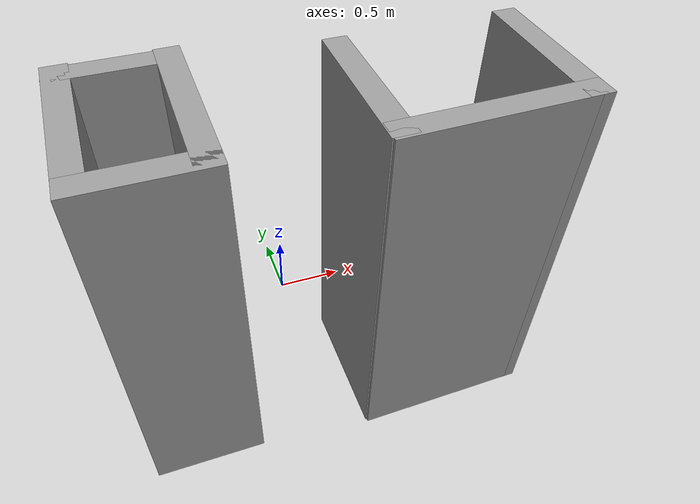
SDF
<?xml version='1.0'?>
<sdf version='1.7'>
  <model name='wall_map2'>
    <pose>0.060166 -0.744163 0 0 -0 0</pose>
    <link name='Wall_0'>
      <collision name='Wall_0_Collision'>
        <geometry>
          <box>
            <size>1.2242 0.15 2.5</size>
          </box>
        </geometry>
        <pose>0 0 1.25 0 -0 0</pose>
      </collision>
      <visual name='Wall_0_Visual'>
        <pose>0 0 1.25 0 -0 0</pose>
        <geometry>
          <box>
            <size>1.2242 0.15 2.5</size>
          </box>
        </geometry>
        <material>
          <script>
            <uri>file://media/materials/scripts/gazebo.material</uri>
            <name>Gazebo/Grey</name>
          </script>
          <ambient>1 1 1 1</ambient>
        </material>
        <meta>
          <layer>0</layer>
        </meta>
      </visual>
      <pose>0.763199 -0.659319 0 0 -0 0.016099</pose>
    </link>
    <link name='Wall_10'>
      <collision name='Wall_10_Collision'>
        <geometry>
          <box>
            <size>0.75 0.15 2.5</size>
          </box>
        </geometry>
        <pose>0 0 1.25 0 -0 0</pose>
      </collision>
      <visual name='Wall_10_Visual'>
        <pose>0 0 1.25 0 -0 0</pose>
        <geometry>
          <box>
            <size>0.75 0.15 2.5</size>
          </box>
        </geometry>
        <material>
          <script>
            <uri>file://media/materials/scripts/gazebo.material</uri>
            <name>Gazebo/Grey</name>
          </script>
          <ambient>1 1 1 1</ambient>
        </material>
        <meta>
          <layer>0</layer>
        </meta>
      </visual>
      <pose>-0.992121 -0.593986 0 0 -0 0</pose>
    </link>
    <link name='Wall_12'>
      <collision name='Wall_12_Collision'>
        <geometry>
          <box>
            <size>1.12974 0.15 2.5</size>
          </box>
        </geometry>
        <pose>0 0 1.25 0 -0 0</pose>
      </collision>
      <visual name='Wall_12_Visual'>
        <pose>0 0 1.25 0 -0 0</pose>
        <geometry>
          <box>
            <size>1.12974 0.15 2.5</size>
          </box>
        </geometry>
        <material>
          <script>
            <uri>file://media/materials/scripts/gazebo.material</uri>
            <name>Gazebo/Grey</name>
          </script>
          <ambient>1 1 1 1</ambient>
        </material>
        <meta>
          <layer>0</layer>
        </meta>
      </visual>
      <pose>-0.696445 -0.09549 0 0 -0 1.57962</pose>
    </link>
    <link name='Wall_13'>
      <collision name='Wall_13_Collision'>
        <geometry>
          <box>
            <size>0.75 0.15 2.5</size>
          </box>
        </geometry>
        <pose>0 0 1.25 0 -0 0</pose>
      </collision>
      <visual name='Wall_13_Visual'>
        <pose>0 0 1.25 0 -0 0</pose>
        <geometry>
          <box>
            <size>0.75 0.15 2.5</size>
          </box>
        </geometry>
        <material>
          <script>
            <uri>file://media/materials/scripts/gazebo.material</uri>
            <name>Gazebo/Grey</name>
          </script>
          <ambient>1 1 1 1</ambient>
        </material>
        <meta>
          <layer>0</layer>
        </meta>
      </visual>
      <pose>-1.00077 0.377066 0 0 -0 3.14159</pose>
    </link>
    <link name='Wall_14'>
      <collision name='Wall_14_Collision'>
        <geometry>
          <box>
            <size>1.12974 0.15 2.5</size>
          </box>
        </geometry>
        <pose>0 0 1.25 0 -0 0</pose>
      </collision>
      <visual name='Wall_14_Visual'>
        <pose>0 0 1.25 0 -0 0</pose>
        <geometry>
          <box>
            <size>1.12974 0.15 2.5</size>
          </box>
        </geometry>
        <material>
          <script>
            <uri>file://media/materials/scripts/gazebo.material</uri>
            <name>Gazebo/Grey</name>
          </script>
          <ambient>1 1 1 1</ambient>
        </material>
        <meta>
          <layer>0</layer>
        </meta>
      </visual>
      <pose>-1.29644 -0.09549 0 0 -0 -1.56197</pose>
    </link>
    <link name='Wall_3'>
      <collision name='Wall_3_Collision'>
        <geometry>
          <box>
            <size>1 0.15 2.5</size>
          </box>
        </geometry>
        <pose>0 0 1.25 0 -0 0</pose>
      </collision>
      <visual name='Wall_3_Visual'>
        <pose>0 0 1.25 0 -0 0</pose>
        <geometry>
          <box>
            <size>1 0.15 2.5</size>
          </box>
        </geometry>
        <material>
          <script>
            <uri>file://media/materials/scripts/gazebo.material</uri>
            <name>Gazebo/Grey</name>
          </script>
          <ambient>1 1 1 1</ambient>
        </material>
        <meta>
          <layer>0</layer>
        </meta>
      </visual>
      <pose>0.217522 -0.225672 0 0 -0 1.5708</pose>
    </link>
    <link name='Wall_5'>
      <collision name='Wall_5_Collision'>
        <geometry>
          <box>
            <size>1 0.15 2.5</size>
          </box>
        </geometry>
        <pose>0 0 1.25 0 -0 0</pose>
      </collision>
      <visual name='Wall_5_Visual'>
        <pose>0 0 1.25 0 -0 0</pose>
        <geometry>
          <box>
            <size>1 0.15 2.5</size>
          </box>
        </geometry>
        <material>
          <script>
            <uri>file://media/materials/scripts/gazebo.material</uri>
            <name>Gazebo/Grey</name>
          </script>
          <ambient>1 1 1 1</ambient>
        </material>
        <meta>
          <layer>0</layer>
        </meta>
      </visual>
      <pose>1.30023 -0.225672 0 0 -0 1.5708</pose>
    </link>
    <static>1</static>
  </model>
</sdf>
